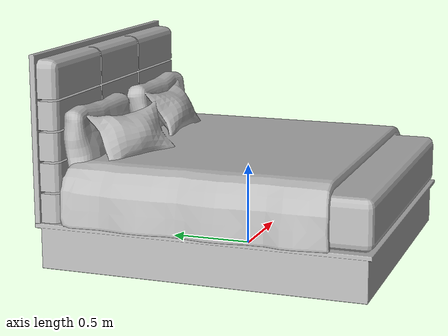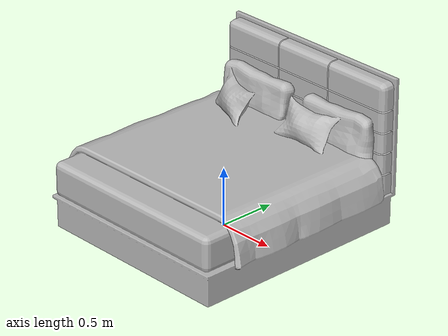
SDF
<?xml version="1.0"?>
<sdf version="1.6">
  <model name="aws_robomaker_residential_Bed_01">
    <link name="link_Bed_01">
      <inertial>
        <mass>22.6</mass>
        <inertia>
          <ixx>0.01</ixx>
          <iyy>0.01</iyy>
          <izz>0.01</izz>
          <ixy>0.0</ixy>
          <ixz>0.0</ixz>
          <iyz>0.0</iyz>
        </inertia>
      </inertial>
      <collision name="collision">
        <geometry>
          <mesh>
            <uri>model://aws_robomaker_residential_Bed_01/meshes/aws_Bed_01_collision.DAE</uri>
            <scale>1 1 1</scale>
          </mesh>
        </geometry>
      </collision>
      <visual name="visual">
        <geometry>
          <mesh>
            <uri>model://aws_robomaker_residential_Bed_01/meshes/aws_Bed_01_visual.DAE</uri>
          </mesh>
        </geometry>
        <meta>
          <layer> 1 </layer>
        </meta>
      </visual>
    </link>
    <static>1</static>
  </model>
</sdf>
